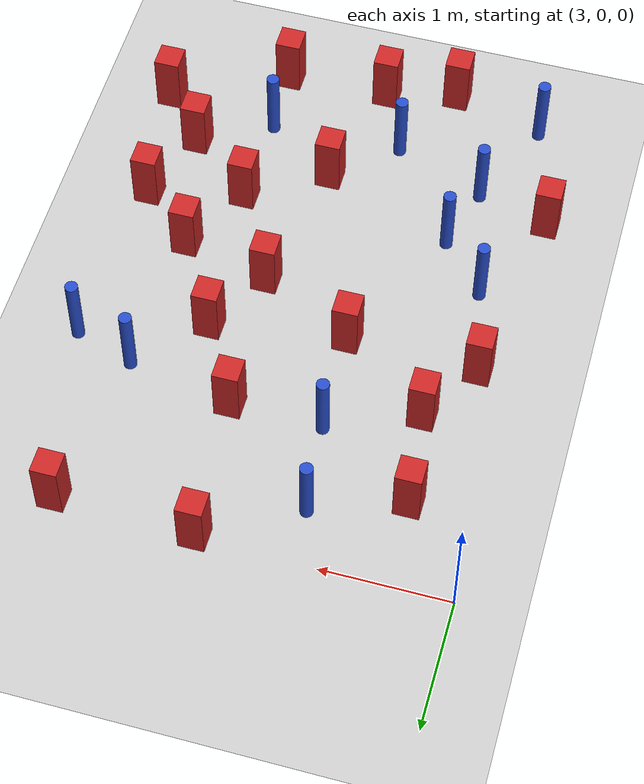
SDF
<sdf version="1.6">
 <world name="default">
  <model name="ground_plane">
   <static>1</static>
   <link name="link">
    <collision name="collision">
     <geometry><plane><normal>0 0 1</normal><size>100 100</size></plane></geometry>
     <surface><friction><ode><mu>100</mu><mu2>50</mu2></ode></friction></surface>
    </collision>
    <visual name="visual">
     <cast_shadows>0</cast_shadows>
     <geometry><plane><normal>0 0 1</normal><size>100 100</size></plane></geometry>
     <material>
      <ambient>1.0 1.0 1.0 1.0</ambient>
      <diffuse>0.8 0.8 0.8 1.0</diffuse>
      <specular>0.01 0.01 0.01 1.000000</specular>
     </material>
    </visual>
   </link>
  </model>
  <model name="pole_obstacle12">
   <static>true</static>
   <pose>4.19699384689 -0.435499464074 -9.47619616065e-06 5.49618799737e-07 2.36310414057e-07 -1.55090534802e-07</pose>
   <link name="link">
    <pose>0 0 0.3 0 -0 0</pose>
    <inertial>
     <mass>1</mass>
     <inertia><ixx>0.145833</ixx><ixy>0</ixy><ixz>0</ixz><iyy>0.145833</iyy><iyz>0</iyz><izz>0.125</izz></inertia>
    </inertial>
    <collision name="collision">
     <geometry><cylinder><radius>0.05</radius><length>.6</length></cylinder></geometry>
    </collision>
    <visual name="visual">
     <geometry><cylinder><radius>0.05</radius><length>.6</length></cylinder></geometry>
     <material>
      <script><name>Gazebo/Blue</name><uri>file://media/materials/scripts/gazebo.material</uri></script>
     </material>
    </visual>
   </link>
  </model>
  <model name="square_post_obstacle14">
   <static>true</static>
   <pose>3.27732072388 -1.94028528122 -6.11067671241e-07 -5.50515727128e-06 -8.79689657224e-07 2.37013304536e-05</pose>
   <link name="link">
    <pose>0 0 0.25 0 -0 0</pose>
    <inertial>
     <mass>100</mass>
     <inertia>
      <ixx>0.166667</ixx>
      <ixy>0</ixy>
      <ixz>0</ixz>
      <iyy>0.166667</iyy>
      <iyz>0</iyz>
      <izz>0.166667</izz>
     </inertia>
    </inertial>
    <collision name="collision"><geometry><box><size>.2 .2 .5</size></box></geometry></collision>
    <visual name="visual">
     <geometry><box><size>.2 .2 .5</size></box></geometry>
     <material>
      <script><name>Gazebo/Red</name><uri>file://media/materials/scripts/gazebo.material</uri></script>
     </material>
    </visual>
   </link>
  </model>
  <model name="pole_obstacle29">
   <static>true</static>
   <pose>4.38228186623 -3.89737166803 -9.47619616065e-06 5.49618799738e-07 2.36310414051e-07 -1.55090534805e-07</pose>
   <link name="link">
    <pose>0 0 0.3 0 -0 0</pose>
    <inertial>
     <mass>1</mass>
     <inertia><ixx>0.145833</ixx><ixy>0</ixy><ixz>0</ixz><iyy>0.145833</iyy><iyz>0</iyz><izz>0.125</izz></inertia>
    </inertial>
    <collision name="collision">
     <geometry><cylinder><radius>0.05</radius><length>.6</length></cylinder></geometry>
    </collision>
    <visual name="visual">
     <geometry><cylinder><radius>0.05</radius><length>.6</length></cylinder></geometry>
     <material>
      <script><name>Gazebo/Blue</name><uri>file://media/materials/scripts/gazebo.material</uri></script>
     </material>
    </visual>
   </link>
  </model>
  <model name="square_post_obstacle25">
   <static>true</static>
   <pose>3.58611399307 -1.43804017746 -6.11067671241e-07 -5.50515727128e-06 -8.79689657224e-07 2.37013304536e-05</pose>
   <link name="link">
    <pose>0 0 0.25 0 -0 0</pose>
    <inertial>
     <mass>100</mass>
     <inertia>
      <ixx>0.166667</ixx>
      <ixy>0</ixy>
      <ixz>0</ixz>
      <iyy>0.166667</iyy>
      <iyz>0</iyz>
      <izz>0.166667</izz>
     </inertia>
    </inertial>
    <collision name="collision"><geometry><box><size>.2 .2 .5</size></box></geometry></collision>
    <visual name="visual">
     <geometry><box><size>.2 .2 .5</size></box></geometry>
     <material>
      <script><name>Gazebo/Red</name><uri>file://media/materials/scripts/gazebo.material</uri></script>
     </material>
    </visual>
   </link>
  </model>
  <model name="square_post_obstacle28">
   <static>true</static>
   <pose>3.07781566351 -3.44852902437 -6.11067671241e-07 -5.50515727128e-06 -8.79689657224e-07 2.37013304536e-05</pose>
   <link name="link">
    <pose>0 0 0.25 0 -0 0</pose>
    <inertial>
     <mass>100</mass>
     <inertia>
      <ixx>0.166667</ixx>
      <ixy>0</ixy>
      <ixz>0</ixz>
      <iyy>0.166667</iyy>
      <iyz>0</iyz>
      <izz>0.166667</izz>
     </inertia>
    </inertial>
    <collision name="collision"><geometry><box><size>.2 .2 .5</size></box></geometry></collision>
    <visual name="visual">
     <geometry><box><size>.2 .2 .5</size></box></geometry>
     <material>
      <script><name>Gazebo/Red</name><uri>file://media/materials/scripts/gazebo.material</uri></script>
     </material>
    </visual>
   </link>
  </model>
  <model name="pole_obstacle33">
   <static>true</static>
   <pose>3.32996329665 -4.36354754661 -9.47619616065e-06 5.49618799738e-07 2.3631041406e-07 -1.55090534801e-07</pose>
   <link name="link">
    <pose>0 0 0.3 0 -0 0</pose>
    <inertial>
     <mass>1</mass>
     <inertia><ixx>0.145833</ixx><ixy>0</ixy><ixz>0</ixz><iyy>0.145833</iyy><iyz>0</iyz><izz>0.125</izz></inertia>
    </inertial>
    <collision name="collision">
     <geometry><cylinder><radius>0.05</radius><length>.6</length></cylinder></geometry>
    </collision>
    <visual name="visual">
     <geometry><cylinder><radius>0.05</radius><length>.6</length></cylinder></geometry>
     <material>
      <script><name>Gazebo/Blue</name><uri>file://media/materials/scripts/gazebo.material</uri></script>
     </material>
    </visual>
   </link>
  </model>
  <model name="square_post_obstacle33">
   <static>true</static>
   <pose>4.90996226972 -0.0184882465239 -6.11067671241e-07 -5.50515727128e-06 -8.79689657224e-07 2.37013304536e-05</pose>
   <link name="link">
    <pose>0 0 0.25 0 -0 0</pose>
    <inertial>
     <mass>100</mass>
     <inertia>
      <ixx>0.166667</ixx>
      <ixy>0</ixy>
      <ixz>0</ixz>
      <iyy>0.166667</iyy>
      <iyz>0</iyz>
      <izz>0.166667</izz>
     </inertia>
    </inertial>
    <collision name="collision"><geometry><box><size>.2 .2 .5</size></box></geometry></collision>
    <visual name="visual">
     <geometry><box><size>.2 .2 .5</size></box></geometry>
     <material>
      <script><name>Gazebo/Red</name><uri>file://media/materials/scripts/gazebo.material</uri></script>
     </material>
    </visual>
   </link>
  </model>
  <model name="pole_obstacle54">
   <static>true</static>
   <pose>6.30250653754 -1.4830554348 -9.47619616065e-06 5.49618799738e-07 2.36310414071e-07 -1.55090534796e-07</pose>
   <link name="link">
    <pose>0 0 0.3 0 -0 0</pose>
    <inertial>
     <mass>1</mass>
     <inertia><ixx>0.145833</ixx><ixy>0</ixy><ixz>0</ixz><iyy>0.145833</iyy><iyz>0</iyz><izz>0.125</izz></inertia>
    </inertial>
    <collision name="collision">
     <geometry><cylinder><radius>0.05</radius><length>.6</length></cylinder></geometry>
    </collision>
    <visual name="visual">
     <geometry><cylinder><radius>0.05</radius><length>.6</length></cylinder></geometry>
     <material>
      <script><name>Gazebo/Blue</name><uri>file://media/materials/scripts/gazebo.material</uri></script>
     </material>
    </visual>
   </link>
  </model>
  <model name="square_post_obstacle46">
   <static>true</static>
   <pose>6.33735917711 -3.96002381666 -6.11067671241e-07 -5.50515727128e-06 -8.79689657224e-07 2.37013304536e-05</pose>
   <link name="link">
    <pose>0 0 0.25 0 -0 0</pose>
    <inertial>
     <mass>100</mass>
     <inertia>
      <ixx>0.166667</ixx>
      <ixy>0</ixy>
      <ixz>0</ixz>
      <iyy>0.166667</iyy>
      <iyz>0</iyz>
      <izz>0.166667</izz>
     </inertia>
    </inertial>
    <collision name="collision"><geometry><box><size>.2 .2 .5</size></box></geometry></collision>
    <visual name="visual">
     <geometry><box><size>.2 .2 .5</size></box></geometry>
     <material>
      <script><name>Gazebo/Red</name><uri>file://media/materials/scripts/gazebo.material</uri></script>
     </material>
    </visual>
   </link>
  </model>
  <model name="square_post_obstacle53">
   <static>true</static>
   <pose>4.99241569234 -1.16344092513 -6.11067671241e-07 -5.50515727128e-06 -8.79689657224e-07 2.37013304536e-05</pose>
   <link name="link">
    <pose>0 0 0.25 0 -0 0</pose>
    <inertial>
     <mass>100</mass>
     <inertia>
      <ixx>0.166667</ixx>
      <ixy>0</ixy>
      <ixz>0</ixz>
      <iyy>0.166667</iyy>
      <iyz>0</iyz>
      <izz>0.166667</izz>
     </inertia>
    </inertial>
    <collision name="collision"><geometry><box><size>.2 .2 .5</size></box></geometry></collision>
    <visual name="visual">
     <geometry><box><size>.2 .2 .5</size></box></geometry>
     <material>
      <script><name>Gazebo/Red</name><uri>file://media/materials/scripts/gazebo.material</uri></script>
     </material>
    </visual>
   </link>
  </model>
  <model name="square_post_obstacle70">
   <static>true</static>
   <pose>3.50005662282 -0.685359226608 -6.11067671241e-07 -5.50515727128e-06 -8.79689657224e-07 2.37013304536e-05</pose>
   <link name="link">
    <pose>0 0 0.25 0 -0 0</pose>
    <inertial>
     <mass>100</mass>
     <inertia>
      <ixx>0.166667</ixx>
      <ixy>0</ixy>
      <ixz>0</ixz>
      <iyy>0.166667</iyy>
      <iyz>0</iyz>
      <izz>0.166667</izz>
     </inertia>
    </inertial>
    <collision name="collision"><geometry><box><size>.2 .2 .5</size></box></geometry></collision>
    <visual name="visual">
     <geometry><box><size>.2 .2 .5</size></box></geometry>
     <material>
      <script><name>Gazebo/Red</name><uri>file://media/materials/scripts/gazebo.material</uri></script>
     </material>
    </visual>
   </link>
  </model>
  <model name="pole_obstacle89">
   <static>true</static>
   <pose>3.43357874101 -2.65526650992 -9.47619616065e-06 5.49618799737e-07 2.36310414051e-07 -1.55090534807e-07</pose>
   <link name="link">
    <pose>0 0 0.3 0 -0 0</pose>
    <inertial>
     <mass>1</mass>
     <inertia><ixx>0.145833</ixx><ixy>0</ixy><ixz>0</ixz><iyy>0.145833</iyy><iyz>0</iyz><izz>0.125</izz></inertia>
    </inertial>
    <collision name="collision">
     <geometry><cylinder><radius>0.05</radius><length>.6</length></cylinder></geometry>
    </collision>
    <visual name="visual">
     <geometry><cylinder><radius>0.05</radius><length>.6</length></cylinder></geometry>
     <material>
      <script><name>Gazebo/Blue</name><uri>file://media/materials/scripts/gazebo.material</uri></script>
     </material>
    </visual>
   </link>
  </model>
  <model name="square_post_obstacle84">
   <static>true</static>
   <pose>5.46082386531 -3.09907040379 -6.11067671241e-07 -5.50515727128e-06 -8.79689657224e-07 2.37013304536e-05</pose>
   <link name="link">
    <pose>0 0 0.25 0 -0 0</pose>
    <inertial>
     <mass>100</mass>
     <inertia>
      <ixx>0.166667</ixx>
      <ixy>0</ixy>
      <ixz>0</ixz>
      <iyy>0.166667</iyy>
      <iyz>0</iyz>
      <izz>0.166667</izz>
     </inertia>
    </inertial>
    <collision name="collision"><geometry><box><size>.2 .2 .5</size></box></geometry></collision>
    <visual name="visual">
     <geometry><box><size>.2 .2 .5</size></box></geometry>
     <material>
      <script><name>Gazebo/Red</name><uri>file://media/materials/scripts/gazebo.material</uri></script>
     </material>
    </visual>
   </link>
  </model>
  <model name="pole_obstacle93">
   <static>true</static>
   <pose>3.79655432508 -3.07418397999 -9.47619616065e-06 5.49618799737e-07 2.36310414051e-07 -1.55090534807e-07</pose>
   <link name="link">
    <pose>0 0 0.3 0 -0 0</pose>
    <inertial>
     <mass>1</mass>
     <inertia><ixx>0.145833</ixx><ixy>0</ixy><ixz>0</ixz><iyy>0.145833</iyy><iyz>0</iyz><izz>0.125</izz></inertia>
    </inertial>
    <collision name="collision">
     <geometry><cylinder><radius>0.05</radius><length>.6</length></cylinder></geometry>
    </collision>
    <visual name="visual">
     <geometry><cylinder><radius>0.05</radius><length>.6</length></cylinder></geometry>
     <material>
      <script><name>Gazebo/Blue</name><uri>file://media/materials/scripts/gazebo.material</uri></script>
     </material>
    </visual>
   </link>
  </model>
  <model name="pole_obstacle112">
   <static>true</static>
   <pose>3.64876796155 -3.60367646899 -9.47619616065e-06 5.49618799737e-07 2.36310414051e-07 -1.55090534807e-07</pose>
   <link name="link">
    <pose>0 0 0.3 0 -0 0</pose>
    <inertial>
     <mass>1</mass>
     <inertia><ixx>0.145833</ixx><ixy>0</ixy><ixz>0</ixz><iyy>0.145833</iyy><iyz>0</iyz><izz>0.125</izz></inertia>
    </inertial>
    <collision name="collision">
     <geometry><cylinder><radius>0.05</radius><length>.6</length></cylinder></geometry>
    </collision>
    <visual name="visual">
     <geometry><cylinder><radius>0.05</radius><length>.6</length></cylinder></geometry>
     <material>
      <script><name>Gazebo/Blue</name><uri>file://media/materials/scripts/gazebo.material</uri></script>
     </material>
    </visual>
   </link>
  </model>
  <model name="square_post_obstacle127">
   <static>true</static>
   <pose>5.44596167424 -4.41347139397 -6.11067671241e-07 -5.50515727128e-06 -8.79689657224e-07 2.37013304536e-05</pose>
   <link name="link">
    <pose>0 0 0.25 0 -0 0</pose>
    <inertial>
     <mass>100</mass>
     <inertia>
      <ixx>0.166667</ixx>
      <ixy>0</ixy>
      <ixz>0</ixz>
      <iyy>0.166667</iyy>
      <iyz>0</iyz>
      <izz>0.166667</izz>
     </inertia>
    </inertial>
    <collision name="collision"><geometry><box><size>.2 .2 .5</size></box></geometry></collision>
    <visual name="visual">
     <geometry><box><size>.2 .2 .5</size></box></geometry>
     <material>
      <script><name>Gazebo/Red</name><uri>file://media/materials/scripts/gazebo.material</uri></script>
     </material>
    </visual>
   </link>
  </model>
  <model name="square_post_obstacle136">
   <static>true</static>
   <pose>5.35245002957 -1.80885654215 -6.11067671241e-07 -5.50515727128e-06 -8.79689657224e-07 2.37013304536e-05</pose>
   <link name="link">
    <pose>0 0 0.25 0 -0 0</pose>
    <inertial>
     <mass>100</mass>
     <inertia>
      <ixx>0.166667</ixx>
      <ixy>0</ixy>
      <ixz>0</ixz>
      <iyy>0.166667</iyy>
      <iyz>0</iyz>
      <izz>0.166667</izz>
     </inertia>
    </inertial>
    <collision name="collision"><geometry><box><size>.2 .2 .5</size></box></geometry></collision>
    <visual name="visual">
     <geometry><box><size>.2 .2 .5</size></box></geometry>
     <material>
      <script><name>Gazebo/Red</name><uri>file://media/materials/scripts/gazebo.material</uri></script>
     </material>
    </visual>
   </link>
  </model>
  <model name="square_post_obstacle138">
   <static>true</static>
   <pose>4.30357921367 -1.96160060492 -6.11067671241e-07 -5.50515727128e-06 -8.79689657224e-07 2.37013304536e-05</pose>
   <link name="link">
    <pose>0 0 0.25 0 -0 0</pose>
    <inertial>
     <mass>100</mass>
     <inertia>
      <ixx>0.166667</ixx>
      <ixy>0</ixy>
      <ixz>0</ixz>
      <iyy>0.166667</iyy>
      <iyz>0</iyz>
      <izz>0.166667</izz>
     </inertia>
    </inertial>
    <collision name="collision"><geometry><box><size>.2 .2 .5</size></box></geometry></collision>
    <visual name="visual">
     <geometry><box><size>.2 .2 .5</size></box></geometry>
     <material>
      <script><name>Gazebo/Red</name><uri>file://media/materials/scripts/gazebo.material</uri></script>
     </material>
    </visual>
   </link>
  </model>
  <model name="square_post_obstacle147">
   <static>true</static>
   <pose>5.05735936688 -2.34002270155 -6.11067671241e-07 -5.50515727128e-06 -8.79689657224e-07 2.37013304536e-05</pose>
   <link name="link">
    <pose>0 0 0.25 0 -0 0</pose>
    <inertial>
     <mass>100</mass>
     <inertia>
      <ixx>0.166667</ixx>
      <ixy>0</ixy>
      <ixz>0</ixz>
      <iyy>0.166667</iyy>
      <iyz>0</iyz>
      <izz>0.166667</izz>
     </inertia>
    </inertial>
    <collision name="collision"><geometry><box><size>.2 .2 .5</size></box></geometry></collision>
    <visual name="visual">
     <geometry><box><size>.2 .2 .5</size></box></geometry>
     <material>
      <script><name>Gazebo/Red</name><uri>file://media/materials/scripts/gazebo.material</uri></script>
     </material>
    </visual>
   </link>
  </model>
  <model name="square_post_obstacle162">
   <static>true</static>
   <pose>5.75767300333 -2.5189554892 -6.11067671241e-07 -5.50515727128e-06 -8.79689657224e-07 2.37013304536e-05</pose>
   <link name="link">
    <pose>0 0 0.25 0 -0 0</pose>
    <inertial>
     <mass>100</mass>
     <inertia>
      <ixx>0.166667</ixx>
      <ixy>0</ixy>
      <ixz>0</ixz>
      <iyy>0.166667</iyy>
      <iyz>0</iyz>
      <izz>0.166667</izz>
     </inertia>
    </inertial>
    <collision name="collision"><geometry><box><size>.2 .2 .5</size></box></geometry></collision>
    <visual name="visual">
     <geometry><box><size>.2 .2 .5</size></box></geometry>
     <material>
      <script><name>Gazebo/Red</name><uri>file://media/materials/scripts/gazebo.material</uri></script>
     </material>
    </visual>
   </link>
  </model>
  <model name="pole_obstacle172">
   <static>true</static>
   <pose>5.43516915783 -3.85814082088 -9.47619616065e-06 5.49618799738e-07 2.36310414051e-07 -1.55090534805e-07</pose>
   <link name="link">
    <pose>0 0 0.3 0 -0 0</pose>
    <inertial>
     <mass>1</mass>
     <inertia><ixx>0.145833</ixx><ixy>0</ixy><ixz>0</ixz><iyy>0.145833</iyy><iyz>0</iyz><izz>0.125</izz></inertia>
    </inertial>
    <collision name="collision">
     <geometry><cylinder><radius>0.05</radius><length>.6</length></cylinder></geometry>
    </collision>
    <visual name="visual">
     <geometry><cylinder><radius>0.05</radius><length>.6</length></cylinder></geometry>
     <material>
      <script><name>Gazebo/Blue</name><uri>file://media/materials/scripts/gazebo.material</uri></script>
     </material>
    </visual>
   </link>
  </model>
  <model name="square_post_obstacle172">
   <static>true</static>
   <pose>4.85409691866 -3.47517051072 -6.11067671241e-07 -5.50515727128e-06 -8.79689657224e-07 2.37013304536e-05</pose>
   <link name="link">
    <pose>0 0 0.25 0 -0 0</pose>
    <inertial>
     <mass>100</mass>
     <inertia>
      <ixx>0.166667</ixx>
      <ixy>0</ixy>
      <ixz>0</ixz>
      <iyy>0.166667</iyy>
      <iyz>0</iyz>
      <izz>0.166667</izz>
     </inertia>
    </inertial>
    <collision name="collision"><geometry><box><size>.2 .2 .5</size></box></geometry></collision>
    <visual name="visual">
     <geometry><box><size>.2 .2 .5</size></box></geometry>
     <material>
      <script><name>Gazebo/Red</name><uri>file://media/materials/scripts/gazebo.material</uri></script>
     </material>
    </visual>
   </link>
  </model>
  <model name="square_post_obstacle190">
   <static>true</static>
   <pose>4.62704097338 -4.43661426832 -6.11067671241e-07 -5.50515727128e-06 -8.79689657224e-07 2.37013304536e-05</pose>
   <link name="link">
    <pose>0 0 0.25 0 -0 0</pose>
    <inertial>
     <mass>100</mass>
     <inertia>
      <ixx>0.166667</ixx>
      <ixy>0</ixy>
      <ixz>0</ixz>
      <iyy>0.166667</iyy>
      <iyz>0</iyz>
      <izz>0.166667</izz>
     </inertia>
    </inertial>
    <collision name="collision"><geometry><box><size>.2 .2 .5</size></box></geometry></collision>
    <visual name="visual">
     <geometry><box><size>.2 .2 .5</size></box></geometry>
     <material>
      <script><name>Gazebo/Red</name><uri>file://media/materials/scripts/gazebo.material</uri></script>
     </material>
    </visual>
   </link>
  </model>
  <model name="square_post_obstacle192">
   <static>true</static>
   <pose>6.20075531926 -2.93160722702 -6.11067671241e-07 -5.50515727128e-06 -8.79689657224e-07 2.37013304536e-05</pose>
   <link name="link">
    <pose>0 0 0.25 0 -0 0</pose>
    <inertial>
     <mass>100</mass>
     <inertia>
      <ixx>0.166667</ixx>
      <ixy>0</ixy>
      <ixz>0</ixz>
      <iyy>0.166667</iyy>
      <iyz>0</iyz>
      <izz>0.166667</izz>
     </inertia>
    </inertial>
    <collision name="collision"><geometry><box><size>.2 .2 .5</size></box></geometry></collision>
    <visual name="visual">
     <geometry><box><size>.2 .2 .5</size></box></geometry>
     <material>
      <script><name>Gazebo/Red</name><uri>file://media/materials/scripts/gazebo.material</uri></script>
     </material>
    </visual>
   </link>
  </model>
  <model name="square_post_obstacle199">
   <static>true</static>
   <pose>5.98888337416 -0.0525218733148 -6.11067671241e-07 -5.50515727128e-06 -8.79689657224e-07 2.37013304536e-05</pose>
   <link name="link">
    <pose>0 0 0.25 0 -0 0</pose>
    <inertial>
     <mass>100</mass>
     <inertia>
      <ixx>0.166667</ixx>
      <ixy>0</ixy>
      <ixz>0</ixz>
      <iyy>0.166667</iyy>
      <iyz>0</iyz>
      <izz>0.166667</izz>
     </inertia>
    </inertial>
    <collision name="collision"><geometry><box><size>.2 .2 .5</size></box></geometry></collision>
    <visual name="visual">
     <geometry><box><size>.2 .2 .5</size></box></geometry>
     <material>
      <script><name>Gazebo/Red</name><uri>file://media/materials/scripts/gazebo.material</uri></script>
     </material>
    </visual>
   </link>
  </model>
  <model name="square_post_obstacle212">
   <static>true</static>
   <pose>5.98748316313 -3.54355807059 -6.11067671241e-07 -5.50515727128e-06 -8.79689657224e-07 2.37013304536e-05</pose>
   <link name="link">
    <pose>0 0 0.25 0 -0 0</pose>
    <inertial>
     <mass>100</mass>
     <inertia>
      <ixx>0.166667</ixx>
      <ixy>0</ixy>
      <ixz>0</ixz>
      <iyy>0.166667</iyy>
      <iyz>0</iyz>
      <izz>0.166667</izz>
     </inertia>
    </inertial>
    <collision name="collision"><geometry><box><size>.2 .2 .5</size></box></geometry></collision>
    <visual name="visual">
     <geometry><box><size>.2 .2 .5</size></box></geometry>
     <material>
      <script><name>Gazebo/Red</name><uri>file://media/materials/scripts/gazebo.material</uri></script>
     </material>
    </visual>
   </link>
  </model>
  <model name="square_post_obstacle220">
   <static>true</static>
   <pose>4.06126535298 -4.56582732273 -6.11067671241e-07 -5.50515727128e-06 -8.79689657224e-07 2.37013304536e-05</pose>
   <link name="link">
    <pose>0 0 0.25 0 -0 0</pose>
    <inertial>
     <mass>100</mass>
     <inertia>
      <ixx>0.166667</ixx>
      <ixy>0</ixy>
      <ixz>0</ixz>
      <iyy>0.166667</iyy>
      <iyz>0</iyz>
      <izz>0.166667</izz>
     </inertia>
    </inertial>
    <collision name="collision"><geometry><box><size>.2 .2 .5</size></box></geometry></collision>
    <visual name="visual">
     <geometry><box><size>.2 .2 .5</size></box></geometry>
     <material>
      <script><name>Gazebo/Red</name><uri>file://media/materials/scripts/gazebo.material</uri></script>
     </material>
    </visual>
   </link>
  </model>
  <model name="pole_obstacle194">
   <static>true</static>
   <pose>5.82856000939 -1.32025997922 -9.47619616065e-06 5.49618799737e-07 2.36310414071e-07 -1.55090534796e-07</pose>
   <link name="link">
    <pose>0 0 0.3 0 -0 0</pose>
    <inertial>
     <mass>1</mass>
     <inertia><ixx>0.145833</ixx><ixy>0</ixy><ixz>0</ixz><iyy>0.145833</iyy><iyz>0</iyz><izz>0.125</izz></inertia>
    </inertial>
    <collision name="collision">
     <geometry><cylinder><radius>0.05</radius><length>.6</length></cylinder></geometry>
    </collision>
    <visual name="visual">
     <geometry><cylinder><radius>0.05</radius><length>.6</length></cylinder></geometry>
     <material>
      <script><name>Gazebo/Blue</name><uri>file://media/materials/scripts/gazebo.material</uri></script>
     </material>
    </visual>
   </link>
  </model>
  <model name="pole_obstacle201">
   <static>true</static>
   <pose>4.27416000939 -1.14845997922 -9.47619616065e-06 5.49618799738e-07 2.36310414071e-07 -1.55090534796e-07</pose>
   <link name="link">
    <pose>0 0 0.3 0 -0 0</pose>
    <inertial>
     <mass>1</mass>
     <inertia><ixx>0.145833</ixx><ixy>0</ixy><ixz>0</ixz><iyy>0.145833</iyy><iyz>0</iyz><izz>0.125</izz></inertia>
    </inertial>
    <collision name="collision">
     <geometry><cylinder><radius>0.05</radius><length>.6</length></cylinder></geometry>
    </collision>
    <visual name="visual">
     <geometry><cylinder><radius>0.05</radius><length>.6</length></cylinder></geometry>
     <material>
      <script><name>Gazebo/Blue</name><uri>file://media/materials/scripts/gazebo.material</uri></script>
     </material>
    </visual>
   </link>
  </model>
 </world>
</sdf>
